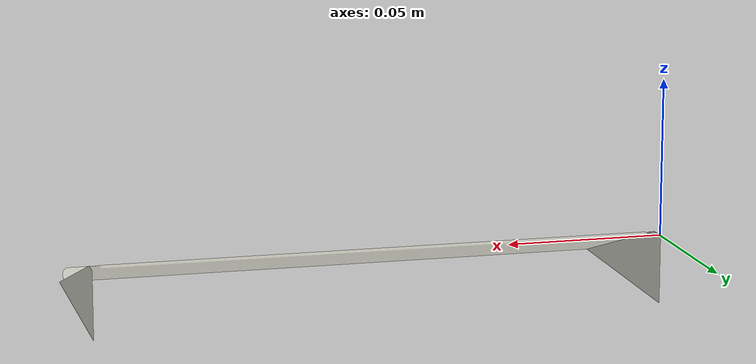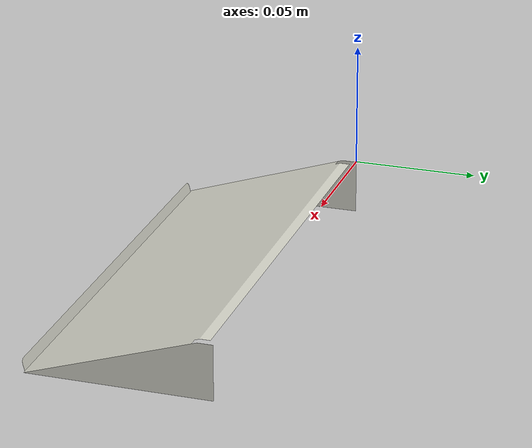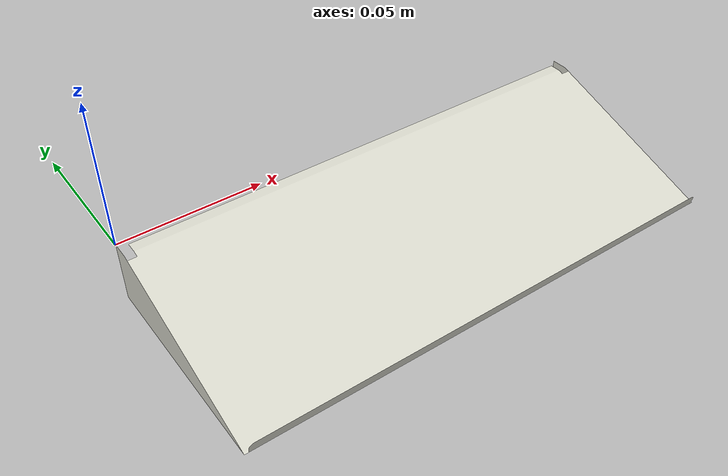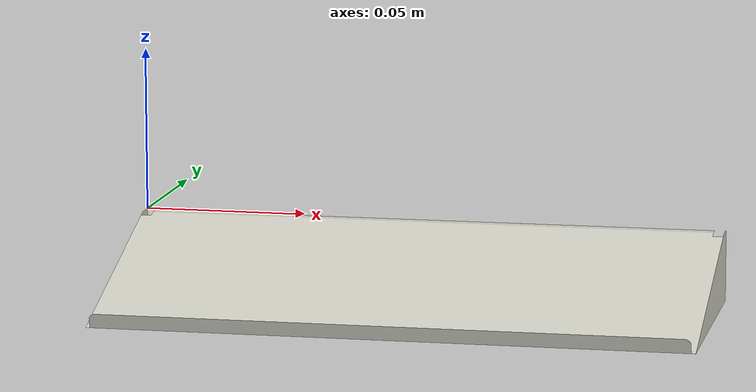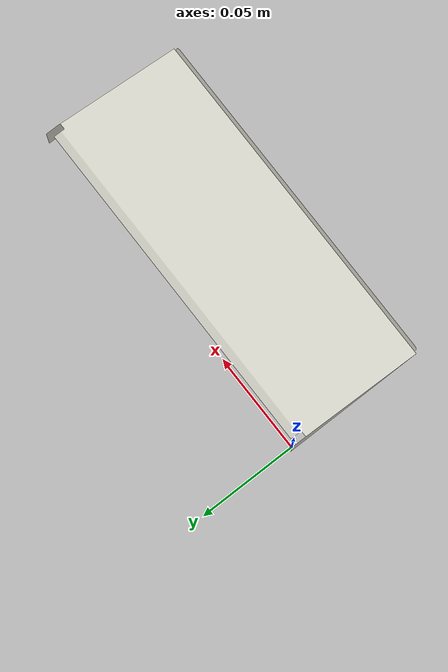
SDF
<?xml version="1.0" ?>
<sdf version="1.5">
  <model name="rampa_2">
    <link name="link">
      <collision name="collision">
        <geometry>
          <mesh>
            <scale>0.2 0.2 0.2</scale>
            <uri>model://rampa_2/meshes/rampa_2.stl</uri>
          </mesh>
        </geometry>
      </collision>
      <visual name="visual">
        <geometry>
          <mesh>
            <scale>0.2 0.2 0.2</scale>
            <uri>model://rampa_2/meshes/rampa_2.dae</uri>
          </mesh>
        </geometry>
      </visual>
    </link>
  </model>
</sdf>
